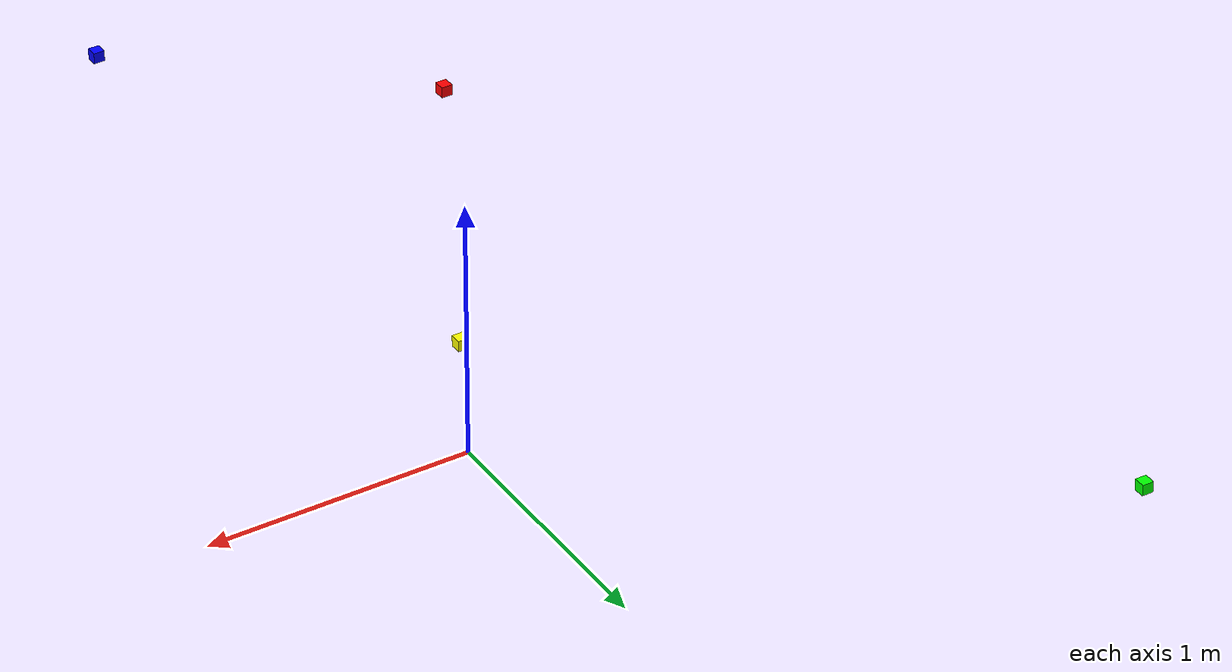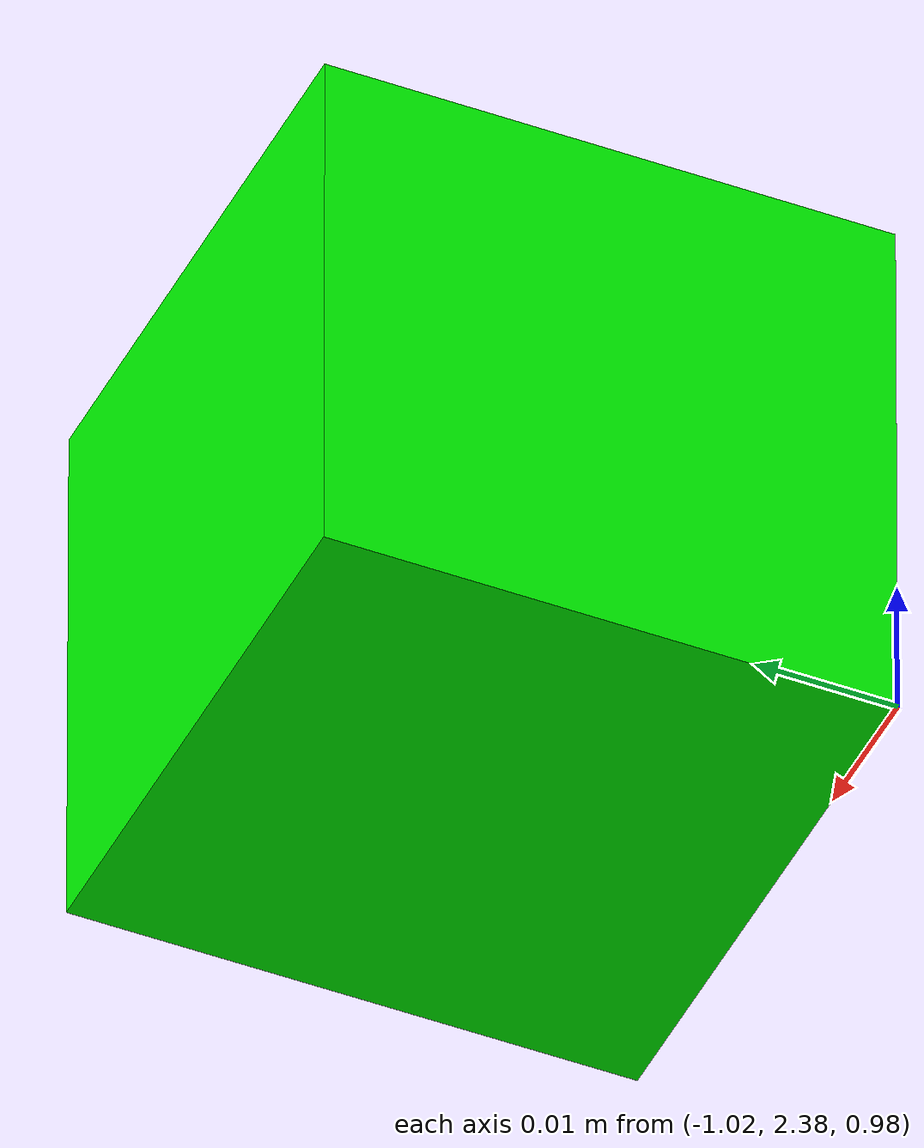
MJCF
<?xml version='1.0' encoding='utf-8'?>
<mujoco model="banana_1">
  <asset>
  </asset>
  <worldbody>
    <body name="object_red_0" pos="-0.3 -0.65 1.0">
        <joint name="object_red_0_joint" type="free" damping="0.0005" />
        <geom type="box" size="0.02 0.02 0.02" rgba="1 0 0 1" density="100" friction="0.95 0.3 0.1" group="1" />
    </body>
    <body name="object_green_0" pos="-1.0 2.4 1.0">
        <joint name="object_green_0_joint" type="free" damping="0.0005" />
        <geom type="box" size="0.02 0.02 0.02" rgba="0 1 0 1" density="100" friction="0.95 0.3 0.1" group="1" />
    </body>
    <body name="object_yellow_0" pos="0.4 0.65 1.0">
        <joint name="object_yellow_0_joint" type="free" damping="0.0005" />
        <geom type="box" size="0.02 0.02 0.02" rgba="1 1 0 1" density="100" friction="0.95 0.3 0.1" group="1" />
    </body>
    <body name="object_blue_0" pos="0.6 -1.45 1.0">
        <joint name="object_blue_0_joint" type="free" damping="0.0005" />
        <geom type="box" size="0.02 0.02 0.02" rgba="0 0 1 1" density="100" friction="0.95 0.3 0.1" group="1" />
    </body>
  </worldbody>
</mujoco>
